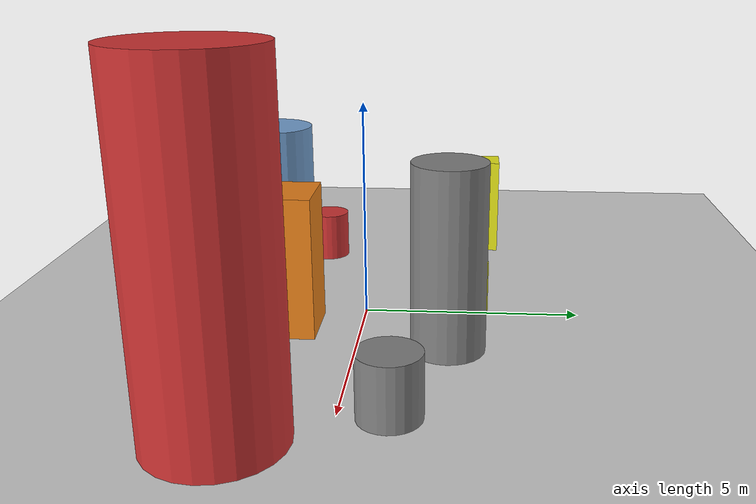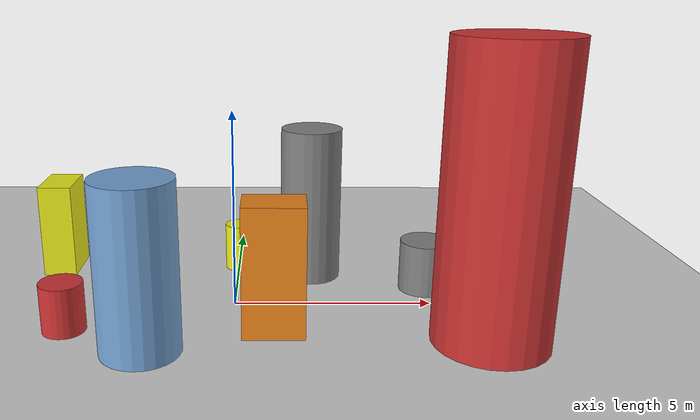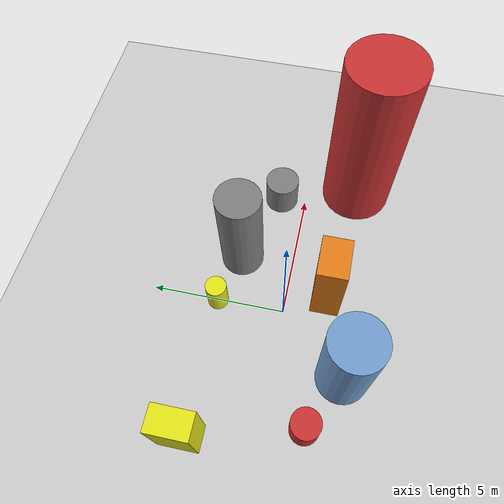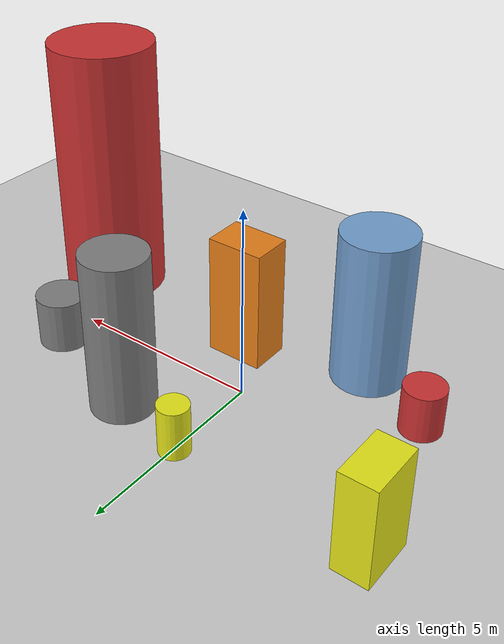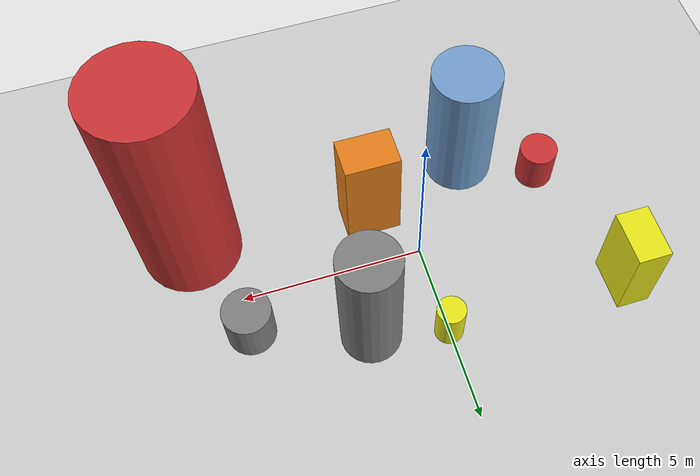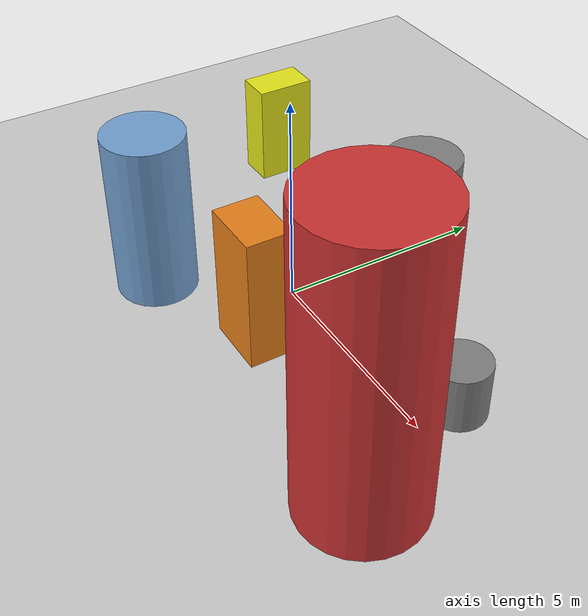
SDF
<?xml version='1.0'?>
<sdf version='1.6'>
  <world name='routeA_rl_v1__support_expansion__rl_train__mixed_3d_low_density_route__000130'>
    <!-- Sun light -->
    <light name='sun' type='directional'>
      <cast_shadows>1</cast_shadows>
      <pose>0 0 10 0 0 0</pose>
      <diffuse>0.8 0.8 0.8 1</diffuse>
      <specular>0.2 0.2 0.2 1</specular>
      <attenuation>
        <range>1000</range>
        <constant>0.9</constant>
        <linear>0.01</linear>
        <quadratic>0.001</quadratic>
      </attenuation>
      <direction>-0.5 0.1 -0.9</direction>
    </light>

    <!-- Ground plane -->
    <model name='ground_plane'>
      <static>1</static>
      <link name='link'>
        <collision name='collision'>
          <geometry>
            <plane>
              <normal>0 0 1</normal>
              <size>100 100</size>
            </plane>
          </geometry>
          <surface>
            <contact>
              <collide_bitmask>65535</collide_bitmask>
              <ode/>
            </contact>
            <friction>
              <ode>
                <mu>100</mu>
                <mu2>50</mu2>
              </ode>
              <torsional><ode/></torsional>
            </friction>
            <bounce/>
          </surface>
          <max_contacts>10</max_contacts>
        </collision>
        <visual name='visual'>
          <cast_shadows>0</cast_shadows>
          <geometry>
            <plane>
              <normal>0 0 1</normal>
              <size>100 100</size>
            </plane>
          </geometry>
          <material>
            <script>
              <uri>file://media/materials/scripts/gazebo.material</uri>
              <n>Gazebo/Grey</n>
            </script>
          </material>
        </visual>
      </link>
    </model>

    <!-- Environment -->
    <magnetic_field>6e-06 2.3e-05 -4.2e-05</magnetic_field>
    <atmosphere type='adiabatic'/>
    <physics name='default_physics' default='0' type='ode'>
      <gravity>0 0 -9.8</gravity>
      <max_step_size>0.004</max_step_size>
      <real_time_factor>1</real_time_factor>
      <real_time_update_rate>250</real_time_update_rate>
    </physics>
    <scene>
      <ambient>0.4 0.4 0.4 1</ambient>
      <background>0.7 0.7 0.7 1</background>
      <shadows>1</shadows>
    </scene>
    <wind/>
    <spherical_coordinates>
      <surface_model>EARTH_WGS84</surface_model>
      <latitude_deg>0</latitude_deg>
      <longitude_deg>0</longitude_deg>
      <elevation>0</elevation>
      <heading_deg>0</heading_deg>
    </spherical_coordinates>

    <!-- ============ OBSTACLES (8) ============ -->
    <model name='low_obs_0'>
      <static>1</static>
      <link name='link'>
        <visual name='visual'>
          <geometry>
            <cylinder>
              <radius>0.5248</radius>
              <length>1.2271</length>
            </cylinder>
          </geometry>
          <material>
            <script>
              <n>Gazebo/Red</n>
              <uri>file://media/materials/scripts/gazebo.material</uri>
            </script>
            <ambient>0.8 0.2 0.2 1</ambient>
          </material>
        </visual>
        <collision name='collision'>
          <geometry>
            <cylinder>
              <radius>0.5248</radius>
              <length>1.2271</length>
            </cylinder>
          </geometry>
          <max_contacts>10</max_contacts>
          <surface>
            <contact><ode/></contact>
            <bounce/>
            <friction>
              <ode><mu>1</mu><mu2>1</mu2></ode>
              <torsional><ode/></torsional>
            </friction>
          </surface>
        </collision>
      </link>
      <pose>-4.0000 -1.5000 0.6136 0 0 0.0000</pose>
    </model>

    <model name='low_obs_1'>
      <static>1</static>
      <link name='link'>
        <visual name='visual'>
          <geometry>
            <cylinder>
              <radius>0.3880</radius>
              <length>1.2965</length>
            </cylinder>
          </geometry>
          <material>
            <script>
              <n>Gazebo/Yellow</n>
              <uri>file://media/materials/scripts/gazebo.material</uri>
            </script>
            <ambient>0.9 0.9 0.1 1</ambient>
          </material>
        </visual>
        <collision name='collision'>
          <geometry>
            <cylinder>
              <radius>0.3880</radius>
              <length>1.2965</length>
            </cylinder>
          </geometry>
          <max_contacts>10</max_contacts>
          <surface>
            <contact><ode/></contact>
            <bounce/>
            <friction>
              <ode><mu>1</mu><mu2>1</mu2></ode>
              <torsional><ode/></torsional>
            </friction>
          </surface>
        </collision>
      </link>
      <pose>0.0000 2.5000 0.6483 0 0 0.0000</pose>
    </model>

    <model name='low_obs_2'>
      <static>1</static>
      <link name='link'>
        <visual name='visual'>
          <geometry>
            <cylinder>
              <radius>0.6526</radius>
              <length>1.3572</length>
            </cylinder>
          </geometry>
          <material>
            <script>
              <n>Gazebo/Grey</n>
              <uri>file://media/materials/scripts/gazebo.material</uri>
            </script>
            <ambient>0.5 0.5 0.5 1</ambient>
          </material>
        </visual>
        <collision name='collision'>
          <geometry>
            <cylinder>
              <radius>0.6526</radius>
              <length>1.3572</length>
            </cylinder>
          </geometry>
          <max_contacts>10</max_contacts>
          <surface>
            <contact><ode/></contact>
            <bounce/>
            <friction>
              <ode><mu>1</mu><mu2>1</mu2></ode>
              <torsional><ode/></torsional>
            </friction>
          </surface>
        </collision>
      </link>
      <pose>5.0000 1.0000 0.6786 0 0 0.0000</pose>
    </model>

    <model name='tall_obs_0'>
      <static>1</static>
      <link name='link'>
        <visual name='visual'>
          <geometry>
            <cylinder>
              <radius>0.9487</radius>
              <length>4.0469</length>
            </cylinder>
          </geometry>
          <material>
            <script>
              <n>Gazebo/Blue</n>
              <uri>file://media/materials/scripts/gazebo.material</uri>
            </script>
            <ambient>0.447 0.624 0.812 1</ambient>
          </material>
        </visual>
        <collision name='collision'>
          <geometry>
            <cylinder>
              <radius>0.9487</radius>
              <length>4.0469</length>
            </cylinder>
          </geometry>
          <max_contacts>10</max_contacts>
          <surface>
            <contact><ode/></contact>
            <bounce/>
            <friction>
              <ode><mu>1</mu><mu2>1</mu2></ode>
              <torsional><ode/></torsional>
            </friction>
          </surface>
        </collision>
      </link>
      <pose>-2.0000 -2.5000 2.0235 0 0 0.0000</pose>
    </model>

    <model name='tall_obs_1'>
      <static>1</static>
      <link name='link'>
        <visual name='visual'>
          <geometry>
            <cylinder>
              <radius>0.8143</radius>
              <length>4.1688</length>
            </cylinder>
          </geometry>
          <material>
            <script>
              <n>Gazebo/Grey</n>
              <uri>file://media/materials/scripts/gazebo.material</uri>
            </script>
            <ambient>0.5 0.5 0.5 1</ambient>
          </material>
        </visual>
        <collision name='collision'>
          <geometry>
            <cylinder>
              <radius>0.8143</radius>
              <length>4.1688</length>
            </cylinder>
          </geometry>
          <max_contacts>10</max_contacts>
          <surface>
            <contact><ode/></contact>
            <bounce/>
            <friction>
              <ode><mu>1</mu><mu2>1</mu2></ode>
              <torsional><ode/></torsional>
            </friction>
          </surface>
        </collision>
      </link>
      <pose>2.0000 2.0000 2.0844 0 0 0.0000</pose>
    </model>

    <model name='tall_obs_2'>
      <static>1</static>
      <link name='link'>
        <visual name='visual'>
          <geometry>
            <cylinder>
              <radius>1.3765</radius>
              <length>6.9724</length>
            </cylinder>
          </geometry>
          <material>
            <script>
              <n>Gazebo/Red</n>
              <uri>file://media/materials/scripts/gazebo.material</uri>
            </script>
            <ambient>0.8 0.2 0.2 1</ambient>
          </material>
        </visual>
        <collision name='collision'>
          <geometry>
            <cylinder>
              <radius>1.3765</radius>
              <length>6.9724</length>
            </cylinder>
          </geometry>
          <max_contacts>10</max_contacts>
          <surface>
            <contact><ode/></contact>
            <bounce/>
            <friction>
              <ode><mu>1</mu><mu2>1</mu2></ode>
              <torsional><ode/></torsional>
            </friction>
          </surface>
        </collision>
      </link>
      <pose>6.0000 -2.0000 3.4862 0 0 0.0000</pose>
    </model>

    <model name='med_obs_0'>
      <static>1</static>
      <link name='link'>
        <visual name='visual'>
          <geometry>
            <box>
              <size>0.8925 1.4401 2.5510</size>
            </box>
          </geometry>
          <material>
            <script>
              <n>Gazebo/Yellow</n>
              <uri>file://media/materials/scripts/gazebo.material</uri>
            </script>
            <ambient>0.9 0.9 0.1 1</ambient>
          </material>
        </visual>
        <collision name='collision'>
          <geometry>
            <box>
              <size>0.8925 1.4401 2.5510</size>
            </box>
          </geometry>
          <max_contacts>10</max_contacts>
          <surface>
            <contact><ode/></contact>
            <bounce/>
            <friction>
              <ode><mu>1</mu><mu2>1</mu2></ode>
              <torsional><ode/></torsional>
            </friction>
          </surface>
        </collision>
      </link>
      <pose>-5.0000 2.5000 1.2755 0 0 0.0000</pose>
    </model>

    <model name='med_obs_1'>
      <static>1</static>
      <link name='link'>
        <visual name='visual'>
          <geometry>
            <box>
              <size>1.4935 1.0654 3.2242</size>
            </box>
          </geometry>
          <material>
            <script>
              <n>Gazebo/Orange</n>
              <uri>file://media/materials/scripts/gazebo.material</uri>
            </script>
            <ambient>0.9 0.5 0.1 1</ambient>
          </material>
        </visual>
        <collision name='collision'>
          <geometry>
            <box>
              <size>1.4935 1.0654 3.2242</size>
            </box>
          </geometry>
          <max_contacts>10</max_contacts>
          <surface>
            <contact><ode/></contact>
            <bounce/>
            <friction>
              <ode><mu>1</mu><mu2>1</mu2></ode>
              <torsional><ode/></torsional>
            </friction>
          </surface>
        </collision>
      </link>
      <pose>1.0000 -1.5000 1.6121 0 0 0.0000</pose>
    </model>

    <!-- GUI camera -->
    <gui fullscreen='0'>
      <camera name='user_camera'>
        <pose>-15 0 18 0 0.85 0.15</pose>
        <view_controller>orbit</view_controller>
        <projection_type>perspective</projection_type>
      </camera>
    </gui>
  </world>
</sdf>
